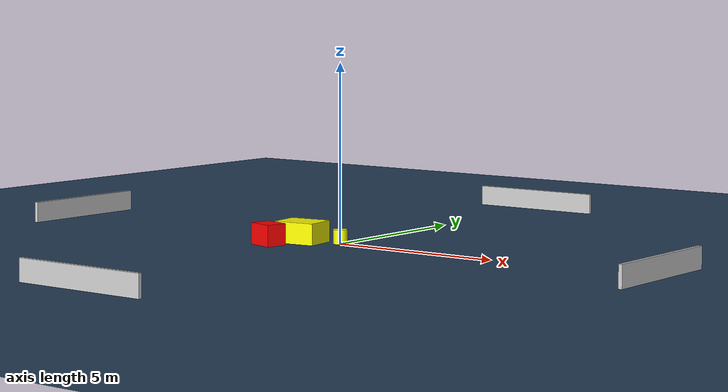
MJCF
<?xml version="1.0" ?>
<mujoco model="generated_environment">
  <option timestep="0.01" integrator="RK4" cone="elliptic"/>
  <default>
    <geom density="1"/>
  </default>
  <asset>
    <texture builtin="gradient" height="3072" name="skybox" rgb1="0.3 0.5 0.7" rgb2="0 0 0" type="skybox" width="512"/>
    <texture builtin="checker" height="300" name="groundplane" rgb1="0.2 0.3 0.4" rgb2="0.1 0.2 0.3" type="2d" width="300"/>
    <material name="groundplane" reflectance="0.2" texrepeat="5 5" texture="groundplane"/>
  </asset>
  <worldbody>
    <light dir="0 0 -1" directional="true" pos="0 0 1.5"/>
    <geom condim="3" friction="0.5 0.005 0.001" material="groundplane" name="floor" pos="0 0 0" size="0 0 0.05" type="plane"/>
    <body name="walls">
      <geom name="wall_1" condim="4" pos="-10.0 0.0 0.3" rgba="0.800000011920929 0.800000011920929 0.800000011920929 1.0" size="0.05 2.0 0.3" type="box"/>
      <geom name="wall_2" condim="4" pos="10.0 0.0 0.3" rgba="0.800000011920929 0.800000011920929 0.800000011920929 1.0" size="0.05 2.0 0.3" type="box"/>
      <geom name="wall_3" condim="4" pos="0.0 -10.0 0.3" rgba="0.800000011920929 0.800000011920929 0.800000011920929 1.0" size="2.0 0.05 0.3" type="box"/>
      <geom name="wall_4" condim="4" pos="0.0 10.0 0.3" rgba="0.800000011920929 0.800000011920929 0.800000011920929 1.0" size="2.0 0.05 0.3" type="box"/>
    </body>
    <body name="robot">
      <joint name="joint_x" type="slide" pos="0 0 0" axis="1 0 0"/>
      <joint name="joint_y" type="slide" pos="0 0 0" axis="0 1 0"/>
      <geom name="robot" type="cylinder" pos="0.0 0.0 0.2" size="0.2 0.2 0.0" mass="5.0" friction="1.0 0.005 0.0001" condim="4" rgba="1.0 1.0 0.0 1.0"/>
    </body>
    <body name="obstacle_1_movable">
      <geom name="obstacle_1_movable" condim="4" pos="-1.01130684385756 -0.41989611179423786 0.3" euler="0 0 187.05594339233954" friction="0.0 0.005 0.001" rgba="1.0 1.0 0.0 1.0" size="0.6076207195057778 0.46908620772906023 0.3" type="box" mass="0.1"/>
      <joint type="free"/>
    </body>
    <body name="obstacle_2_static">
      <geom name="obstacle_2_static" condim="4" pos="-1.4405265521763928 -1.3671476004277314 0.3" euler="0 0 165.64405229074183" friction="0.0 0.005 0.001" rgba="1.0 0.0 0.0 1.0" size="0.3984162103338901 0.3019301318997102 0.3" type="box"/>
    </body>
  </worldbody>
  <actuator>
    <motor name="actuator_x" joint="joint_x" gear="1" ctrlrange="-1 1"/>
    <motor name="actuator_y" joint="joint_y" gear="1" ctrlrange="-1 1"/>
  </actuator>
</mujoco>
